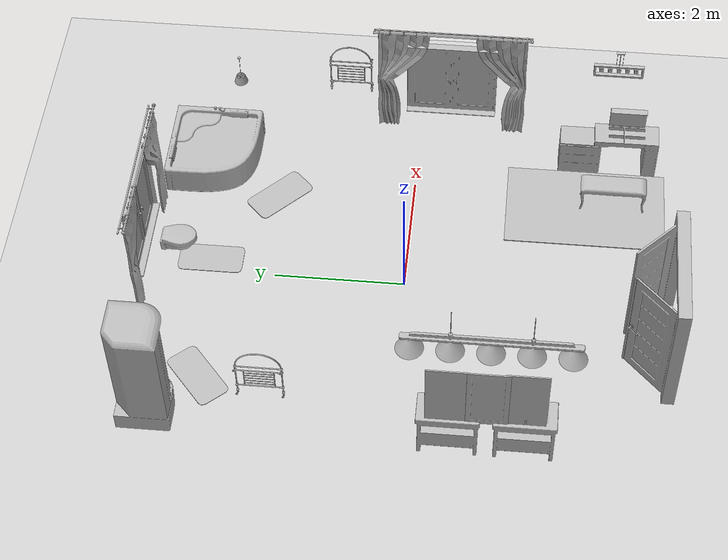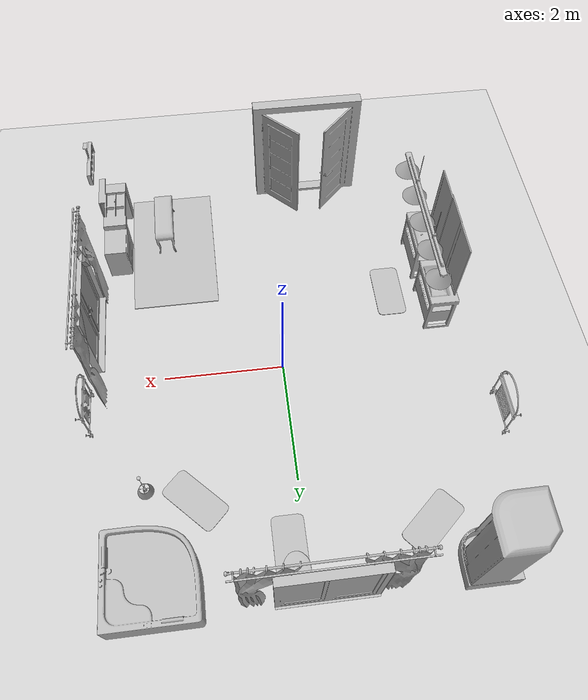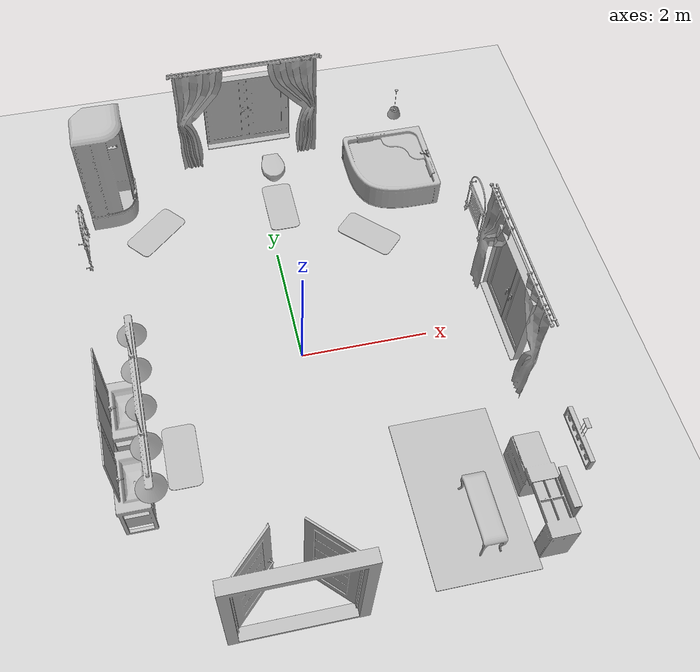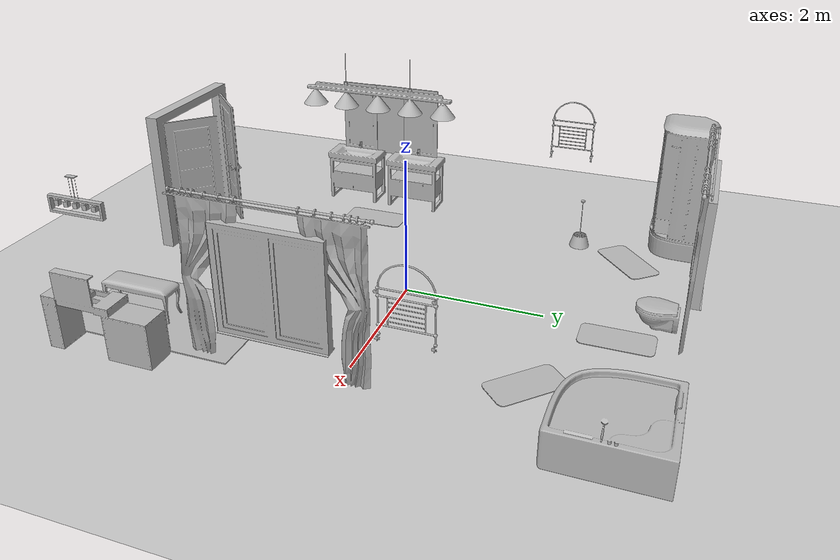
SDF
<sdf version="1.4">
 <world name="default">
  <light name="sun" type="directional">
   <pose>0 0 10 0 -0 0</pose>
   <diffuse>0.8 0.8 0.8 1</diffuse>
   <specular>0.2 0.2 0.2 1</specular>
   <attenuation>
    <range>1000</range>
    <constant>0.9</constant>
    <linear>0.01</linear>
    <quadratic>0.001</quadratic>
   </attenuation>
   <direction>-0.5 0.1 -0.9</direction>
  </light>
  <model name="ground_plane">
   <static>1</static>
   <link name="link">
    <collision name="collision">
     <geometry><plane><normal>0 0 1</normal><size>100 100</size></plane></geometry>
     <surface><friction><ode><mu>100</mu><mu2>50</mu2></ode></friction></surface>
    </collision>
    <visual name="visual">
     <cast_shadows>0</cast_shadows>
     <geometry><plane><normal>0 0 1</normal><size>100 100</size></plane></geometry>
     <material>
      <script><uri>file://media/materials/scripts/gazebo.material</uri><name>Gazebo/Grey</name></script>
     </material>
    </visual>
    <velocity_decay><linear>0</linear><angular>0</angular></velocity_decay>
   </link>
  </model>
  <physics type="ode">
   <max_step_size>0.001</max_step_size>
   <real_time_factor>1</real_time_factor>
   <real_time_update_rate>1000</real_time_update_rate>
   <gravity>0 0 -9.8</gravity>
  </physics>
  <scene><ambient>0.4 0.4 0.4 1</ambient><background>0.7 0.7 0.7 1</background><shadows>1</shadows></scene>
  <spherical_coordinates>
   <surface_model>EARTH_WGS84</surface_model>
   <latitude_deg>0</latitude_deg>
   <longitude_deg>0</longitude_deg>
   <elevation>0</elevation>
   <heading_deg>0</heading_deg>
  </spherical_coordinates>
  <model name="133_0">
   <pose>-0.897628 -3.99863 0.02 0 0 -1.5708</pose>
   <static>1</static>
   <link name="link">
    <collision name="collision"><geometry><box><size>0.769999 1.9 2</size></box></geometry></collision>
    <visual name="visual"><geometry><mesh><uri>model://133/133.dae</uri></mesh></geometry></visual>
    <velocity_decay><linear>0</linear><angular>0</angular></velocity_decay>
   </link>
  </model>
  <model name="418_0">
   <pose>0.209552 3.42263 0.25 0 0 -1.5708</pose>
   <static>1</static>
   <link name="link">
    <collision name="collision"><geometry><box><size>0.54 0.39 2</size></box></geometry></collision>
    <visual name="visual"><geometry><mesh><uri>model://418/418.dae</uri></mesh></geometry></visual>
    <velocity_decay><linear>0</linear><angular>0</angular></velocity_decay>
   </link>
  </model>
  <model name="82_0">
   <pose>2.24642 3.25035 -0.006426 0 0 -1.5708</pose>
   <static>1</static>
   <link name="link">
    <collision name="collision"><geometry><box><size>1.40016 1.40013 2</size></box></geometry></collision>
    <visual name="visual"><geometry><mesh><uri>model://82/82.dae</uri></mesh></geometry></visual>
    <velocity_decay><linear>0</linear><angular>0</angular></velocity_decay>
   </link>
  </model>
  <model name="139_0">
   <pose>-2.54851 3.51106 0.05 0 -0 0</pose>
   <static>1</static>
   <link name="link">
    <collision name="collision"><geometry><box><size>0.799989 0.799988 2</size></box></geometry></collision>
    <visual name="visual"><geometry><mesh><uri>model://139/139.dae</uri></mesh></geometry></visual>
    <velocity_decay><linear>0</linear><angular>0</angular></velocity_decay>
   </link>
  </model>
  <model name="87_0">
   <pose>-2.74904 -1.93488 0.05 0 -0 0</pose>
   <static>1</static>
   <link name="link">
    <collision name="collision"><geometry><box><size>0.470595 0.900102 2</size></box></geometry></collision>
    <visual name="visual"><geometry><mesh><uri>model://87/87.dae</uri></mesh></geometry></visual>
    <velocity_decay><linear>0</linear><angular>0</angular></velocity_decay>
   </link>
  </model>
  <model name="87_1">
   <pose>-2.74831 -0.85488 0.05 0 -0 0</pose>
   <static>1</static>
   <link name="link">
    <collision name="collision"><geometry><box><size>0.470595 0.900102 2</size></box></geometry></collision>
    <visual name="visual"><geometry><mesh><uri>model://87/87.dae</uri></mesh></geometry></visual>
    <velocity_decay><linear>0</linear><angular>0</angular></velocity_decay>
   </link>
  </model>
  <model name="229_0">
   <pose>2.9262 1.08912 1.15 0 0 -3.14159</pose>
   <static>1</static>
   <link name="link">
    <collision name="collision"><geometry><box><size>0.1 0.680124 2</size></box></geometry></collision>
    <visual name="visual"><geometry><mesh><uri>model://229/229.dae</uri></mesh></geometry></visual>
    <velocity_decay><linear>0</linear><angular>0</angular></velocity_decay>
   </link>
  </model>
  <model name="229_1">
   <pose>-2.94774 1.73712 1.15 0 -0 0</pose>
   <static>1</static>
   <link name="link">
    <collision name="collision"><geometry><box><size>0.1 0.680124 2</size></box></geometry></collision>
    <visual name="visual"><geometry><mesh><uri>model://229/229.dae</uri></mesh></geometry></visual>
    <velocity_decay><linear>0</linear><angular>0</angular></velocity_decay>
   </link>
  </model>
  <model name="144_0">
   <pose>-2.93471 -1.39488 0.85 0 0 -3.14159</pose>
   <static>1</static>
   <link name="link">
    <collision name="collision"><geometry><box><size>0.02 0.6 2</size></box></geometry></collision>
    <visual name="visual"><geometry><mesh><uri>model://144/144.dae</uri></mesh></geometry></visual>
    <velocity_decay><linear>0</linear><angular>0</angular></velocity_decay>
   </link>
  </model>
  <model name="200_0">
   <pose>2.70311 -3.03888 -0.00421 0 0 -3.14159</pose>
   <static>1</static>
   <link name="link">
    <collision name="collision"><geometry><box><size>0.401018 1.55 2</size></box></geometry></collision>
    <visual name="visual"><geometry><mesh><uri>model://200/200.dae</uri></mesh></geometry></visual>
    <velocity_decay><linear>0</linear><angular>0</angular></velocity_decay>
   </link>
  </model>
  <model name="478_0">
   <pose>1.85355 -3.13488 0.05 0 -0 0</pose>
   <static>1</static>
   <link name="link">
    <collision name="collision"><geometry><box><size>0.34 1.03 2</size></box></geometry></collision>
    <visual name="visual"><geometry><mesh><uri>model://478/478.dae</uri></mesh></geometry></visual>
    <velocity_decay><linear>0</linear><angular>0</angular></velocity_decay>
   </link>
  </model>
  <model name="633_0">
   <pose>2.81395 -3.05088 1.95258 0 -0 0</pose>
   <static>1</static>
   <link name="link">
    <collision name="collision"><geometry><box><size>0.06 0.76 2</size></box></geometry></collision>
    <visual name="visual"><geometry><mesh><uri>model://633/633.dae</uri></mesh></geometry></visual>
    <velocity_decay><linear>0</linear><angular>0</angular></velocity_decay>
   </link>
  </model>
  <model name="628_0">
   <pose>-2.4134 -1.39488 1.8 0 -0 0</pose>
   <static>1</static>
   <link name="link">
    <collision name="collision"><geometry><box><size>0.4 2.64 2</size></box></geometry></collision>
    <visual name="visual"><geometry><mesh><uri>model://628/628.dae</uri></mesh></geometry></visual>
    <velocity_decay><linear>0</linear><angular>0</angular></velocity_decay>
   </link>
  </model>
  <model name="629_0">
   <pose>1.98555 2.64912 2.19 0 -0 0</pose>
   <static>1</static>
   <link name="link">
    <collision name="collision"><geometry><box><size>0.199138 0.199138 2</size></box></geometry></collision>
    <visual name="visual"><geometry><mesh><uri>model://629/629.dae</uri></mesh></geometry></visual>
    <velocity_decay><linear>0</linear><angular>0</angular></velocity_decay>
   </link>
  </model>
  <model name="144_1">
   <pose>-2.92054 -1.92288 0.85 0 -0 0</pose>
   <static>1</static>
   <link name="link">
    <collision name="collision"><geometry><box><size>0.02 0.6 2</size></box></geometry></collision>
    <visual name="visual"><geometry><mesh><uri>model://144/144.dae</uri></mesh></geometry></visual>
    <velocity_decay><linear>0</linear><angular>0</angular></velocity_decay>
   </link>
  </model>
  <model name="144_2">
   <pose>-2.9298 -0.830879 0.85 0 -0 0</pose>
   <static>1</static>
   <link name="link">
    <collision name="collision"><geometry><box><size>0.02 0.6 2</size></box></geometry></collision>
    <visual name="visual"><geometry><mesh><uri>model://144/144.dae</uri></mesh></geometry></visual>
    <velocity_decay><linear>0</linear><angular>0</angular></velocity_decay>
   </link>
  </model>
  <model name="238_0">
   <pose>1.74028 -2.72273 0.003971 0 -0 0</pose>
   <static>1</static>
   <link name="link">
    <collision name="collision"><geometry><box><size>1.5 2.5 0</size></box></geometry></collision>
    <visual name="visual"><geometry><mesh><uri>model://238/238.dae</uri></mesh></geometry></visual>
    <velocity_decay><linear>0</linear><angular>0</angular></velocity_decay>
   </link>
  </model>
  <model name="235_0">
   <pose>1.60325 2.13291 0.002902 0 -0 0.785398</pose>
   <static>1</static>
   <link name="link">
    <collision name="collision"><geometry><box><size>0.5 1 0</size></box></geometry></collision>
    <visual name="visual"><geometry><mesh><uri>model://235/235.dae</uri></mesh></geometry></visual>
    <velocity_decay><linear>0</linear><angular>0</angular></velocity_decay>
   </link>
  </model>
  <model name="235_1">
   <pose>-1.93784 2.89166 0.004548 0 0 -0.855229</pose>
   <static>1</static>
   <link name="link">
    <collision name="collision"><geometry><box><size>0.5 1 0</size></box></geometry></collision>
    <visual name="visual"><geometry><mesh><uri>model://235/235.dae</uri></mesh></geometry></visual>
    <velocity_decay><linear>0</linear><angular>0</angular></velocity_decay>
   </link>
  </model>
  <model name="235_2">
   <pose>0.245554 3.02686 0.002333 0 -0 0</pose>
   <static>1</static>
   <link name="link">
    <collision name="collision"><geometry><box><size>0.5 1 0</size></box></geometry></collision>
    <visual name="visual"><geometry><mesh><uri>model://235/235.dae</uri></mesh></geometry></visual>
    <velocity_decay><linear>0</linear><angular>0</angular></velocity_decay>
   </link>
  </model>
  <model name="235_3">
   <pose>-2.07108 -1.32288 0.0008 0 -0 0</pose>
   <static>1</static>
   <link name="link">
    <collision name="collision"><geometry><box><size>0.5 1 0</size></box></geometry></collision>
    <visual name="visual"><geometry><mesh><uri>model://235/235.dae</uri></mesh></geometry></visual>
    <velocity_decay><linear>0</linear><angular>0</angular></velocity_decay>
   </link>
  </model>
  <model name="209_0">
   <pose>-0.127233 3.89653 0.85 0 0 -1.5708</pose>
   <static>1</static>
   <link name="link">
    <collision name="collision"><geometry><box><size>0.175 1.4 2</size></box></geometry></collision>
    <visual name="visual"><geometry><mesh><uri>model://209/209.dae</uri></mesh></geometry></visual>
    <velocity_decay><linear>0</linear><angular>0</angular></velocity_decay>
   </link>
  </model>
  <model name="209_1">
   <pose>2.90877 -0.494881 0.85 0 -0 3.14159</pose>
   <static>1</static>
   <link name="link">
    <collision name="collision"><geometry><box><size>0.175 1.4 2</size></box></geometry></collision>
    <visual name="visual"><geometry><mesh><uri>model://209/209.dae</uri></mesh></geometry></visual>
    <velocity_decay><linear>0</linear><angular>0</angular></velocity_decay>
   </link>
  </model>
  <model name="275_0">
   <pose>2.88326 -0.494882 0.46 0 -0 3.14159</pose>
   <static>1</static>
   <link name="link">
    <collision name="collision"><geometry><box><size>0.12888 2.44974 2</size></box></geometry></collision>
    <visual name="visual"><geometry><mesh><uri>model://275/275.dae</uri></mesh></geometry></visual>
    <velocity_decay><linear>0</linear><angular>0</angular></velocity_decay>
   </link>
  </model>
  <model name="275_1">
   <pose>-0.126446 3.81922 0.46 0 0 -1.5708</pose>
   <static>1</static>
   <link name="link">
    <collision name="collision"><geometry><box><size>0.12888 2.44974 2</size></box></geometry></collision>
    <visual name="visual"><geometry><mesh><uri>model://275/275.dae</uri></mesh></geometry></visual>
    <velocity_decay><linear>0</linear><angular>0</angular></velocity_decay>
   </link>
  </model>
 </world>
</sdf>
